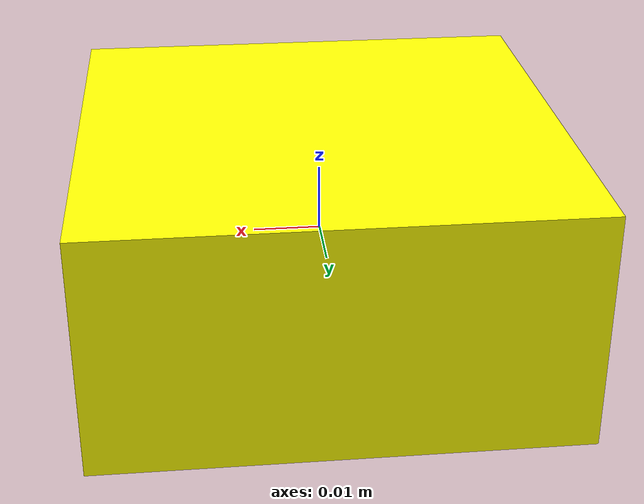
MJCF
<mujoco model="square_box">
  <worldbody>
    <body name="square_box" >
      <body name="collision">
        <geom pos="0 0 0" mesh="square_box" type="mesh" solimp="0.998 0.998 0.001" solref="0.001 1" rgba="1 1 0 1" density="50" friction="0.95 0.3 0.1" group="0" condim="6"/>
      </body>
      <body name="visual">
        <geom pos="0 0 0" mesh="square_box" type="mesh" solref="0.001 1" density="100" friction="0.95 0.3 0.1" rgba="0 1 0 1" conaffinity="0" contype="0" group="0" condim="4"/>
      </body>
      <site rgba="0 0 0 0" size="0.005" pos="0 0 -0.06" name="bottom_site"/>
      <site rgba="0 0 0 0" size="0.005" pos="0 0 0.04" name="top_site"/>
      <site rgba="0 0 0 0" size="0.005" pos="0.025 0.025 0" name="horizontal_radius_site"/>
    </body>
  </worldbody>
  <asset>
    <mesh file="meshes/square_box.stl" name="square_box" scale="0.001 0.001 0.001"/>
  </asset>
</mujoco>
